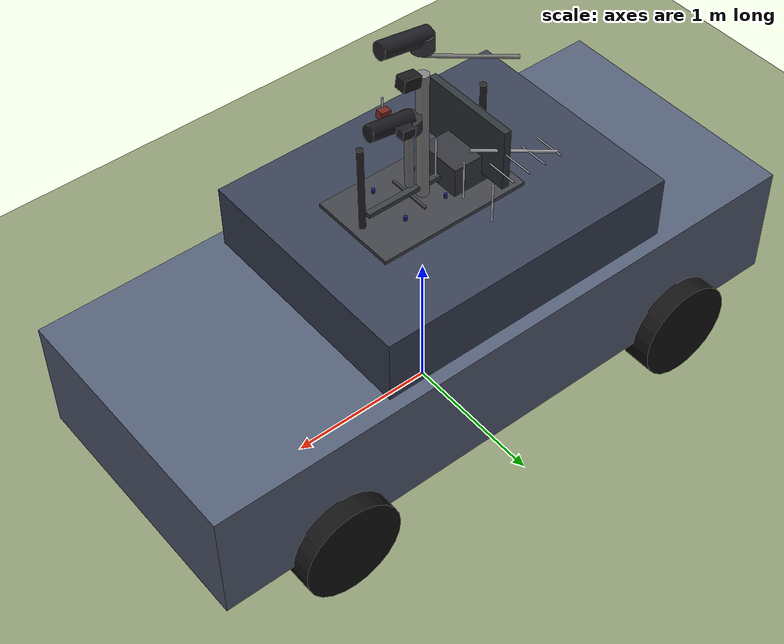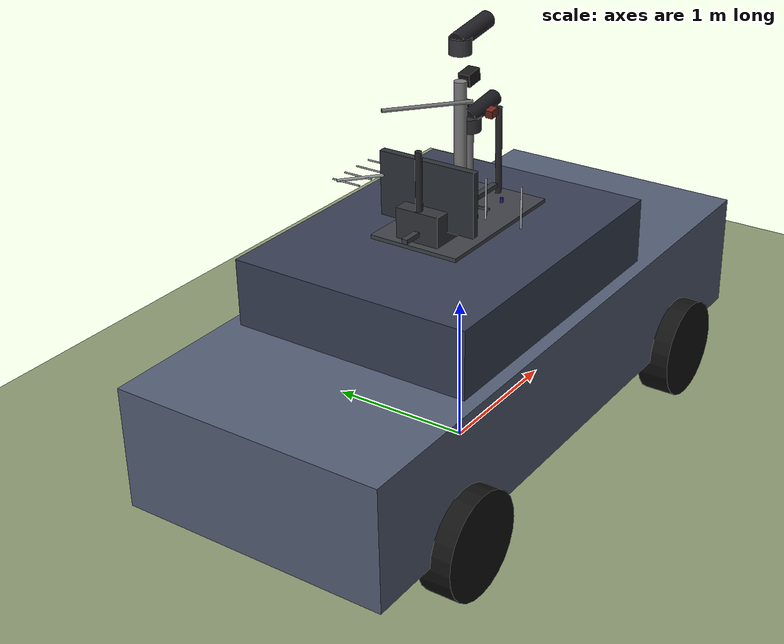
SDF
<?xml version="1.0" encoding="UTF-8"?>
<sdf version="1.9">
  <world name="detection_world">
    <physics type="ode">
      <max_step_size>0.004</max_step_size>
      <real_time_factor>1.0</real_time_factor>
      <real_time_update_rate>250</real_time_update_rate>
    </physics>
    <gravity>0 0 -9.8</gravity>
    <magnetic_field>6e-06 2.3e-05 -4.2e-05</magnetic_field>
    <atmosphere type="adiabatic"/>

    <plugin filename="gz-sim-physics-system" name="gz::sim::systems::Physics"/>
    <plugin filename="gz-sim-user-commands-system" name="gz::sim::systems::UserCommands"/>
    <plugin filename="gz-sim-scene-broadcaster-system" name="gz::sim::systems::SceneBroadcaster"/>
    <plugin filename="gz-sim-sensors-system" name="gz::sim::systems::Sensors">
      <render_engine>ogre2</render_engine>
    </plugin>
    <plugin filename="gz-sim-imu-system" name="gz::sim::systems::Imu"/>
    <plugin filename="gz-sim-magnetometer-system" name="gz::sim::systems::Magnetometer"/>
    <plugin filename="gz-sim-air-pressure-system" name="gz::sim::systems::AirPressure"/>
    <plugin filename="gz-sim-navsat-system" name="gz::sim::systems::NavSat"/>

    <scene>
      <grid>false</grid>
      <ambient>0.4 0.4 0.4 1</ambient>
      <background>0.55 0.7 0.9 1</background>
      <shadows>true</shadows>
    </scene>

    <light name="sunUTC" type="directional">
      <pose>0 0 500 0 -0 0</pose>
      <cast_shadows>true</cast_shadows>
      <intensity>1</intensity>
      <direction>0.001 0.625 -0.78</direction>
      <diffuse>0.904 0.904 0.904 1</diffuse>
      <specular>0.271 0.271 0.271 1</specular>
      <attenuation>
        <range>2000</range>
        <linear>0</linear>
        <constant>1</constant>
        <quadratic>0</quadratic>
      </attenuation>
    </light>

    <model name="ground_plane">
      <static>true</static>
      <link name="link">
        <collision name="collision">
          <geometry>
            <plane>
              <normal>0 0 1</normal>
              <size>1 1</size>
            </plane>
          </geometry>
        </collision>
        <visual name="visual">
          <geometry>
            <plane>
              <normal>0 0 1</normal>
              <size>800 800</size>
            </plane>
          </geometry>
          <material>
            <ambient>0.55 0.6 0.45 1</ambient>
            <diffuse>0.55 0.6 0.45 1</diffuse>
            <specular>0.1 0.1 0.1 1</specular>
          </material>
        </visual>
      </link>
    </model>

    <!-- ============ Fixed ground detection station ============ -->
    <model name="detection_station">
      <static>true</static>
      <pose>0 0 0 0 0 0</pose>

      <!-- equipment cabin -->
      <link name="base">
        <pose>0 0 0.5 0 0 0</pose>
        <visual name="cabin">
          <geometry><box><size>1.2 1.2 1.0</size></box></geometry>
          <material>
            <ambient>0.3 0.3 0.32 1</ambient>
            <diffuse>0.3 0.3 0.32 1</diffuse>
          </material>
        </visual>
        <collision name="cabin_col">
          <geometry><box><size>1.2 1.2 1.0</size></box></geometry>
        </collision>
      </link>

      <!-- sensor mast -->
      <link name="mast">
        <pose>0 0 1.75 0 0 0</pose>
        <visual name="pole">
          <geometry><cylinder><radius>0.04</radius><length>1.5</length></cylinder></geometry>
          <material>
            <ambient>0.5 0.5 0.5 1</ambient>
            <diffuse>0.5 0.5 0.5 1</diffuse>
          </material>
        </visual>
      </link>

      <!-- CAMERA: 2.5 m up, looking EAST (+X), pitched 8.6 deg up.
           720p @ 15 Hz keeps CPU/RAM sane on this machine; raise later if needed. -->
      <link name="camera_link">
        <pose>0.1 0 2.5 0 -0.15 0</pose>
        <visual name="camera_body">
          <geometry><box><size>0.12 0.08 0.08</size></box></geometry>
          <material>
            <ambient>0.1 0.1 0.1 1</ambient>
            <diffuse>0.1 0.1 0.1 1</diffuse>
          </material>
        </visual>
        <sensor name="station_camera" type="camera">
          <topic>/detection_station/camera/image</topic>
          <update_rate>15</update_rate>
          <always_on>true</always_on>
          <visualize>false</visualize>
          <camera>
            <horizontal_fov>1.047</horizontal_fov>
            <image>
              <width>1280</width>
              <height>720</height>
              <format>R8G8B8</format>
            </image>
            <clip>
              <near>0.1</near>
              <far>1000</far>
            </clip>
            <camera_info_topic>/detection_station/camera/camera_info</camera_info_topic>
          </camera>
        </sensor>
      </link>

      <!-- MICROPHONE ARRAY mount (pose marker only — Gazebo has no acoustics;
           Phase 3 synthesizes audio from sim state relative to this pose). -->
      <link name="mic_array_link">
        <pose>0 0.35 1.1 0 0 0</pose>
        <visual name="mic_array">
          <geometry><cylinder><radius>0.09</radius><length>0.06</length></cylinder></geometry>
          <material>
            <ambient>0.15 0.15 0.4 1</ambient>
            <diffuse>0.15 0.15 0.4 1</diffuse>
          </material>
        </visual>
      </link>

      <!-- CUED TELEPHOTO on a pan-tilt head. The 6 deg lens sees 1% of the
           wide field and only works because it is pointed, so the head is
           part of the design rather than decoration. -->
      <link name="gimbal_link">
        <pose>0 0 2.72 0 0 0</pose>
        <visual name="yoke">
          <geometry><cylinder><radius>0.07</radius><length>0.10</length></cylinder></geometry>
          <material>
            <ambient>0.22 0.22 0.24 1</ambient>
            <diffuse>0.22 0.22 0.24 1</diffuse>
          </material>
        </visual>
      </link>
      <link name="tele_barrel">
        <pose>0.13 0 2.78 0 -0.15 0</pose>
        <visual name="barrel">
          <pose>0 0 0 0 1.5708 0</pose>
          <geometry><cylinder><radius>0.055</radius><length>0.34</length></cylinder></geometry>
          <material>
            <ambient>0.12 0.12 0.14 1</ambient>
            <diffuse>0.12 0.12 0.14 1</diffuse>
          </material>
        </visual>
      </link>

      <link name="pcl_panel">
        <pose>-0.35 0 1.90 0 0 3.1416</pose>
        <visual name="panel">
          <geometry><box><size>0.05 0.67 0.42</size></box></geometry>
          <material>
            <ambient>0.18 0.20 0.22 1</ambient>
            <diffuse>0.18 0.20 0.22 1</diffuse>
          </material>
        </visual>
      </link>
      <link name="pcl_reference">
        <pose>-0.35 0 2.45 0 0 2.44</pose>
        <visual name="boom">
          <pose>0 0 0 0 1.5708 0</pose>
          <geometry><cylinder><radius>0.012</radius><length>0.55</length></cylinder></geometry>
          <material>
            <ambient>0.45 0.45 0.45 1</ambient>
            <diffuse>0.45 0.45 0.45 1</diffuse>
          </material>
        </visual>
      </link>

      <!-- RADAR panel mount (pose marker only — Phase 4 computes returns from
           ground-truth kinematics relative to this pose, plus a noise model). -->
      <link name="radar_link">
        <pose>0.15 -0.35 1.3 0 -0.1 0</pose>
        <visual name="radar_panel">
          <geometry><box><size>0.04 0.5 0.4</size></box></geometry>
          <material>
            <ambient>0.6 0.6 0.62 1</ambient>
            <diffuse>0.6 0.6 0.62 1</diffuse>
          </material>
        </visual>
      </link>
    </model>

    <!-- PX4 default reference location (Zurich Irchel) — keep identical to
         PX4's own worlds so GPS init behaves exactly like stock setups. -->
    <spherical_coordinates>
      <surface_model>EARTH_WGS84</surface_model>
      <world_frame_orientation>ENU</world_frame_orientation>
      <latitude_deg>47.397971057728974</latitude_deg>
      <longitude_deg>8.546163739800146</longitude_deg>
      <elevation>0</elevation>
    </spherical_coordinates>
    <model name="car_rig"><static>true</static>
    <link name="bar_front"><pose>0.45 0 1.55 0 0 1.5708</pose>
      <visual name="v"><geometry><cylinder><radius>0.022</radius><length>1.3</length></cylinder></geometry>
        <material><ambient>0.15 0.15 0.16 1</ambient><diffuse>0.15 0.15 0.16 1</diffuse></material></visual></link>
    <link name="bar_rear"><pose>-0.45 0 1.55 0 0 1.5708</pose>
      <visual name="v"><geometry><cylinder><radius>0.022</radius><length>1.3</length></cylinder></geometry>
        <material><ambient>0.15 0.15 0.16 1</ambient><diffuse>0.15 0.15 0.16 1</diffuse></material></visual></link>
    <link name="plate"><pose>0 0 1.60 0 0 0</pose>
      <visual name="v"><geometry><box><size>1.05 0.62 0.03</size></box></geometry>
        <material><ambient>0.25 0.26 0.28 1</ambient><diffuse>0.25 0.26 0.28 1</diffuse></material></visual></link>
    <link name="ebox"><pose>-0.30 0 1.72 0 0 0</pose>
      <visual name="v"><geometry><box><size>0.36 0.3 0.2</size></box></geometry>
        <material><ambient>0.2 0.21 0.23 1</ambient><diffuse>0.2 0.21 0.23 1</diffuse></material></visual></link>
    <link name="mast"><pose>0.10 0 1.95 0 0 0</pose>
      <visual name="v"><geometry><cylinder><radius>0.028</radius><length>0.42</length></cylinder></geometry>
        <material><ambient>0.45 0.45 0.47 1</ambient><diffuse>0.45 0.45 0.47 1</diffuse></material></visual></link>
    <link name="head_yoke"><pose>0.10 0 2.20 0 0 0</pose>
      <visual name="v"><geometry><cylinder><radius>0.075</radius><length>0.09</length></cylinder></geometry>
        <material><ambient>0.18 0.18 0.2 1</ambient><diffuse>0.18 0.18 0.2 1</diffuse></material></visual></link>
    <link name="tele"><pose>0.24 0 2.26 0 -0.15 0</pose>
      <visual name="v"><pose>0 0 0 0 1.5708 0</pose><geometry><cylinder><radius>0.052</radius><length>0.3</length></cylinder></geometry>
        <material><ambient>0.1 0.1 0.12 1</ambient><diffuse>0.1 0.1 0.12 1</diffuse></material></visual></link>
    <link name="wide"><pose>0.20 0.10 2.26 0 -0.15 0</pose>
      <visual name="v"><geometry><box><size>0.09 0.06 0.06</size></box></geometry>
        <material><ambient>0.12 0.12 0.14 1</ambient><diffuse>0.12 0.12 0.14 1</diffuse></material></visual></link>
    <link name="thermal"><pose>0.20 -0.10 2.26 0 -0.15 0</pose>
      <visual name="v"><geometry><box><size>0.07 0.05 0.05</size></box></geometry>
        <material><ambient>0.45 0.15 0.12 1</ambient><diffuse>0.45 0.15 0.12 1</diffuse></material></visual></link>
    <link name="pcl_rail"><pose>-0.10 0 1.68 0 0 1.5708</pose>
      <visual name="v"><geometry><box><size>0.04 1.02 0.03</size></box></geometry>
        <material><ambient>0.22 0.24 0.26 1</ambient><diffuse>0.22 0.24 0.26 1</diffuse></material></visual></link>
    <link name="pcl_el0"><pose>-0.10 -0.5 1.83 0 0 0</pose>
      <visual name="v"><geometry><cylinder><radius>0.006</radius><length>0.27</length></cylinder></geometry>
        <material><ambient>0.78 0.78 0.8 1</ambient><diffuse>0.78 0.78 0.8 1</diffuse></material></visual></link>
    <link name="pcl_el1"><pose>-0.10 -0.25 1.83 0 0 0</pose>
      <visual name="v"><geometry><cylinder><radius>0.006</radius><length>0.27</length></cylinder></geometry>
        <material><ambient>0.78 0.78 0.8 1</ambient><diffuse>0.78 0.78 0.8 1</diffuse></material></visual></link>
    <link name="pcl_el2"><pose>-0.10 0.0 1.83 0 0 0</pose>
      <visual name="v"><geometry><cylinder><radius>0.006</radius><length>0.27</length></cylinder></geometry>
        <material><ambient>0.78 0.78 0.8 1</ambient><diffuse>0.78 0.78 0.8 1</diffuse></material></visual></link>
    <link name="pcl_el3"><pose>-0.10 0.25 1.83 0 0 0</pose>
      <visual name="v"><geometry><cylinder><radius>0.006</radius><length>0.27</length></cylinder></geometry>
        <material><ambient>0.78 0.78 0.8 1</ambient><diffuse>0.78 0.78 0.8 1</diffuse></material></visual></link>
    <link name="pcl_el4"><pose>-0.10 0.5 1.83 0 0 0</pose>
      <visual name="v"><geometry><cylinder><radius>0.006</radius><length>0.27</length></cylinder></geometry>
        <material><ambient>0.78 0.78 0.8 1</ambient><diffuse>0.78 0.78 0.8 1</diffuse></material></visual></link>
    <link name="ref_boom"><pose>-0.40 0.34 1.95 0 0 2.44</pose>
      <visual name="v"><pose>0 0 0 0 1.5708 0</pose><geometry><cylinder><radius>0.01</radius><length>0.5</length></cylinder></geometry>
        <material><ambient>0.58 0.58 0.6 1</ambient><diffuse>0.58 0.58 0.6 1</diffuse></material></visual></link>
    <link name="ref_el0"><pose>-0.5800000000000001 0.44000000000000006 1.95 1.5708 0 0</pose>
      <visual name="v"><geometry><cylinder><radius>0.005</radius><length>0.2</length></cylinder></geometry>
        <material><ambient>0.58 0.58 0.6 1</ambient><diffuse>0.58 0.58 0.6 1</diffuse></material></visual></link>
    <link name="ref_el1"><pose>-0.46 0.44000000000000006 1.95 1.5708 0 0</pose>
      <visual name="v"><geometry><cylinder><radius>0.005</radius><length>0.2</length></cylinder></geometry>
        <material><ambient>0.58 0.58 0.6 1</ambient><diffuse>0.58 0.58 0.6 1</diffuse></material></visual></link>
    <link name="ref_el2"><pose>-0.34 0.44000000000000006 1.95 1.5708 0 0</pose>
      <visual name="v"><geometry><cylinder><radius>0.005</radius><length>0.2</length></cylinder></geometry>
        <material><ambient>0.58 0.58 0.6 1</ambient><diffuse>0.58 0.58 0.6 1</diffuse></material></visual></link>
    <link name="ref_el3"><pose>-0.22000000000000003 0.44000000000000006 1.95 1.5708 0 0</pose>
      <visual name="v"><geometry><cylinder><radius>0.005</radius><length>0.2</length></cylinder></geometry>
        <material><ambient>0.58 0.58 0.6 1</ambient><diffuse>0.58 0.58 0.6 1</diffuse></material></visual></link>
    <link name="mic_x"><pose>0.10 0 1.66 0 0 0</pose>
      <visual name="v"><geometry><box><size>0.3 0.014 0.014</size></box></geometry>
        <material><ambient>0.3 0.3 0.33 1</ambient><diffuse>0.3 0.3 0.33 1</diffuse></material></visual></link>
    <link name="mic_y"><pose>0.10 0 1.66 0 0 0</pose>
      <visual name="v"><geometry><box><size>0.014 0.3 0.014</size></box></geometry>
        <material><ambient>0.3 0.3 0.33 1</ambient><diffuse>0.3 0.3 0.33 1</diffuse></material></visual></link>
    <link name="mic0"><pose>0.25 0.15 1.67 0 0 0</pose>
      <visual name="v"><geometry><cylinder><radius>0.011</radius><length>0.03</length></cylinder></geometry>
        <material><ambient>0.12 0.12 0.45 1</ambient><diffuse>0.12 0.12 0.45 1</diffuse></material></visual></link>
    <link name="mic1"><pose>0.25 -0.15 1.67 0 0 0</pose>
      <visual name="v"><geometry><cylinder><radius>0.011</radius><length>0.03</length></cylinder></geometry>
        <material><ambient>0.12 0.12 0.45 1</ambient><diffuse>0.12 0.12 0.45 1</diffuse></material></visual></link>
    <link name="mic2"><pose>-0.05 0.15 1.67 0 0 0</pose>
      <visual name="v"><geometry><cylinder><radius>0.011</radius><length>0.03</length></cylinder></geometry>
        <material><ambient>0.12 0.12 0.45 1</ambient><diffuse>0.12 0.12 0.45 1</diffuse></material></visual></link>
    <link name="mic3"><pose>-0.05 -0.15 1.67 0 0 0</pose>
      <visual name="v"><geometry><cylinder><radius>0.011</radius><length>0.03</length></cylinder></geometry>
        <material><ambient>0.12 0.12 0.45 1</ambient><diffuse>0.12 0.12 0.45 1</diffuse></material></visual></link>
  </model>
  <model name="car"><static>true</static>
    <link name="body"><pose>0 0 0.75 0 0 0</pose>
      <visual name="v"><geometry><box><size>4.3 1.8 0.8</size></box></geometry>
        <material><ambient>0.33 0.37 0.46 1</ambient><diffuse>0.33 0.37 0.46 1</diffuse></material></visual></link>
    <link name="cabin"><pose>-0.15 0 1.28 0 0 0</pose>
      <visual name="v"><geometry><box><size>2.1 1.62 0.62</size></box></geometry>
        <material><ambient>0.22 0.25 0.33 1</ambient><diffuse>0.22 0.25 0.33 1</diffuse></material></visual></link>
    <link name="wheel0"><pose>1.35 0.92 0.34 1.5708 0 0</pose>
      <visual name="v"><geometry><cylinder><radius>0.34</radius><length>0.22</length></cylinder></geometry>
        <material><ambient>0.07 0.07 0.07 1</ambient><diffuse>0.07 0.07 0.07 1</diffuse></material></visual></link>
    <link name="wheel1"><pose>1.35 -0.92 0.34 1.5708 0 0</pose>
      <visual name="v"><geometry><cylinder><radius>0.34</radius><length>0.22</length></cylinder></geometry>
        <material><ambient>0.07 0.07 0.07 1</ambient><diffuse>0.07 0.07 0.07 1</diffuse></material></visual></link>
    <link name="wheel2"><pose>-1.35 0.92 0.34 1.5708 0 0</pose>
      <visual name="v"><geometry><cylinder><radius>0.34</radius><length>0.22</length></cylinder></geometry>
        <material><ambient>0.07 0.07 0.07 1</ambient><diffuse>0.07 0.07 0.07 1</diffuse></material></visual></link>
    <link name="wheel3"><pose>-1.35 -0.92 0.34 1.5708 0 0</pose>
      <visual name="v"><geometry><cylinder><radius>0.34</radius><length>0.22</length></cylinder></geometry>
        <material><ambient>0.07 0.07 0.07 1</ambient><diffuse>0.07 0.07 0.07 1</diffuse></material></visual></link>
  </model>
  <model name="view0"><static>true</static>
    <link name="l"><pose>2.9 -2.4 2.55 0 0.1 2.47</pose>
      <sensor name="c0" type="camera"><topic>/rig/view0</topic>
        <update_rate>4</update_rate><always_on>true</always_on>
        <camera><horizontal_fov>0.75</horizontal_fov>
          <image><width>1280</width><height>800</height><format>R8G8B8</format></image>
          <clip><near>0.05</near><far>200</far></clip></camera>
      </sensor></link></model>
  <model name="view1"><static>true</static>
    <link name="l"><pose>0.1 -3.1 2.05 0 -0.02 1.5708</pose>
      <sensor name="c1" type="camera"><topic>/rig/view1</topic>
        <update_rate>4</update_rate><always_on>true</always_on>
        <camera><horizontal_fov>0.75</horizontal_fov>
          <image><width>1280</width><height>800</height><format>R8G8B8</format></image>
          <clip><near>0.05</near><far>200</far></clip></camera>
      </sensor></link></model>
  <model name="view2"><static>true</static>
    <link name="l"><pose>3.1 0.05 2.75 0 0.16 3.1416</pose>
      <sensor name="c2" type="camera"><topic>/rig/view2</topic>
        <update_rate>4</update_rate><always_on>true</always_on>
        <camera><horizontal_fov>0.75</horizontal_fov>
          <image><width>1280</width><height>800</height><format>R8G8B8</format></image>
          <clip><near>0.05</near><far>200</far></clip></camera>
      </sensor></link></model>

  </world>
</sdf>
